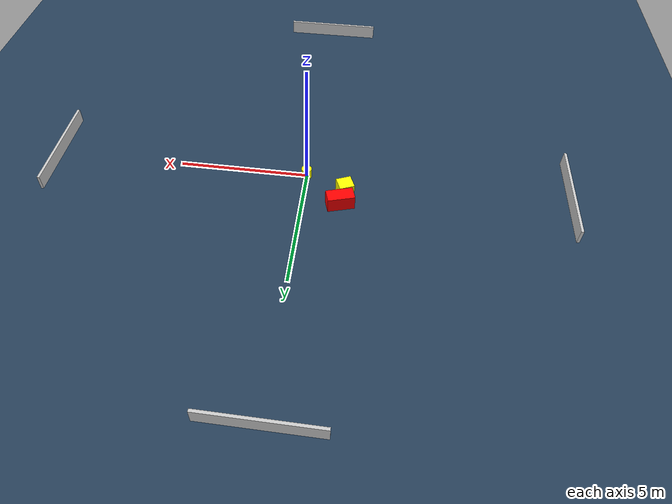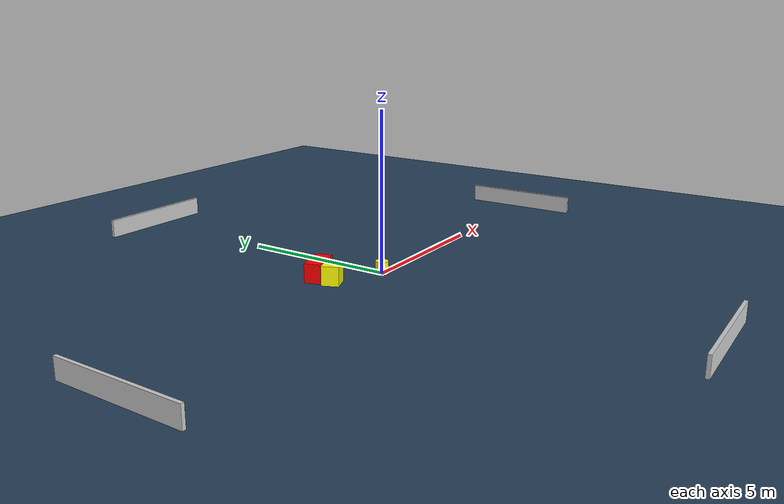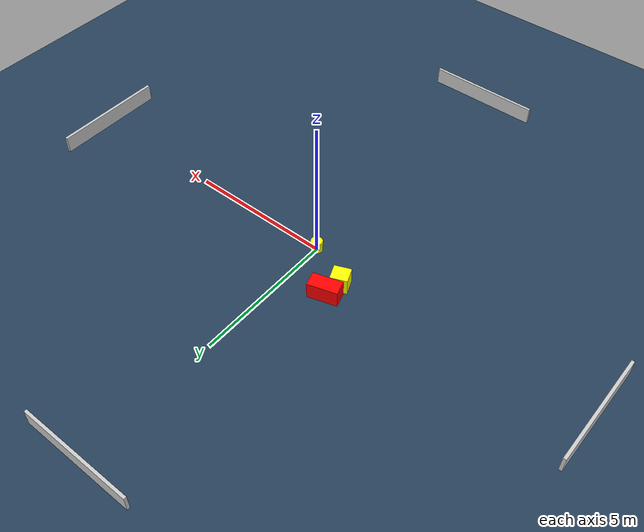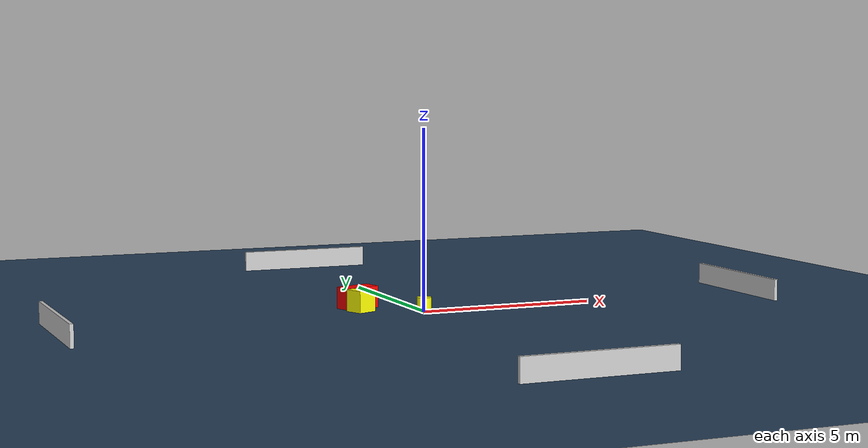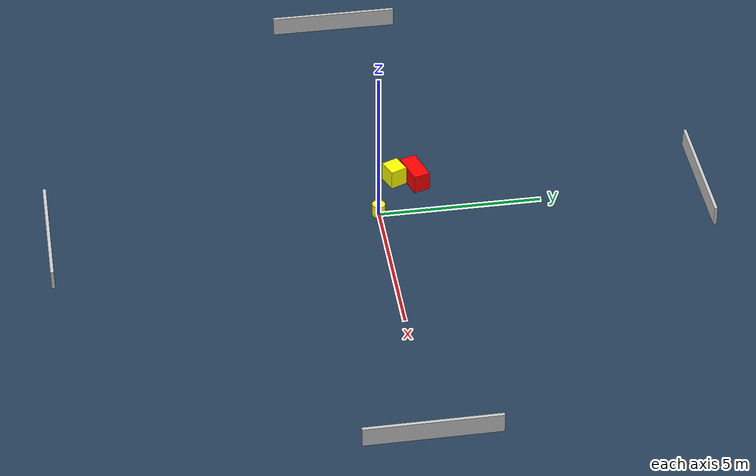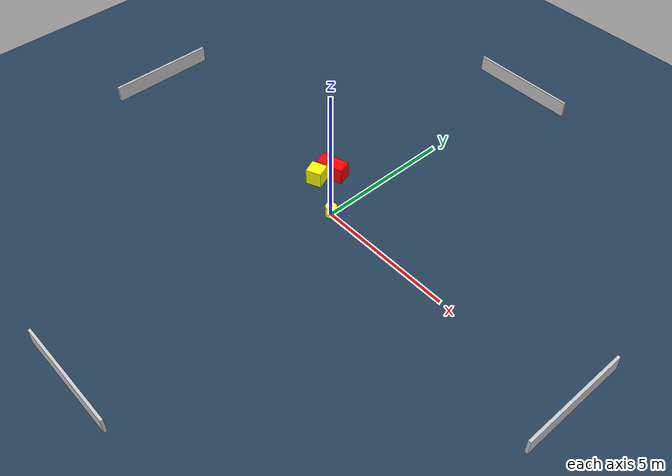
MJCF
<?xml version="1.0" ?>
<mujoco model="generated_environment">
  <option timestep="0.01" integrator="RK4" cone="elliptic"/>
  <default>
    <geom density="1"/>
  </default>
  <asset>
    <texture builtin="gradient" height="3072" name="skybox" rgb1="0.3 0.5 0.7" rgb2="0 0 0" type="skybox" width="512"/>
    <texture builtin="checker" height="300" name="groundplane" rgb1="0.2 0.3 0.4" rgb2="0.1 0.2 0.3" type="2d" width="300"/>
    <material name="groundplane" reflectance="0.2" texrepeat="5 5" texture="groundplane"/>
  </asset>
  <worldbody>
    <light dir="0 0 -1" directional="true" pos="0 0 1.5"/>
    <geom condim="3" friction="0.5 0.005 0.001" material="groundplane" name="floor" pos="0 0 0" size="0 0 0.05" type="plane"/>
    <body name="walls">
      <geom name="wall_1" condim="4" pos="-10.0 0.0 0.3" rgba="0.800000011920929 0.800000011920929 0.800000011920929 1.0" size="0.05 2.0 0.3" type="box"/>
      <geom name="wall_2" condim="4" pos="10.0 0.0 0.3" rgba="0.800000011920929 0.800000011920929 0.800000011920929 1.0" size="0.05 2.0 0.3" type="box"/>
      <geom name="wall_3" condim="4" pos="0.0 -10.0 0.3" rgba="0.800000011920929 0.800000011920929 0.800000011920929 1.0" size="2.0 0.05 0.3" type="box"/>
      <geom name="wall_4" condim="4" pos="0.0 10.0 0.3" rgba="0.800000011920929 0.800000011920929 0.800000011920929 1.0" size="2.0 0.05 0.3" type="box"/>
    </body>
    <body name="robot">
      <joint name="joint_x" type="slide" pos="0 0 0" axis="1 0 0"/>
      <joint name="joint_y" type="slide" pos="0 0 0" axis="0 1 0"/>
      <geom name="robot" type="cylinder" pos="0.0 0.0 0.2" size="0.2 0.2 0.0" mass="5.0" friction="1.0 0.005 0.0001" condim="4" rgba="1.0 1.0 0.0 1.0"/>
    </body>
    <body name="obstacle_1_movable">
      <geom name="obstacle_1_movable" condim="4" pos="-1.5604563189071872 0.7252298534640741 0.3" euler="0 0 292.6624675880438" friction="0.0 0.005 0.001" rgba="1.0 1.0 0.0 1.0" size="0.26696698131331975 0.2876117652434794 0.3" type="box" mass="0.1"/>
      <joint type="free"/>
    </body>
    <body name="obstacle_2_static">
      <geom name="obstacle_2_static" condim="4" pos="-1.43197503873043 1.3410637995233425 0.3" euler="0 0 286.57615080131825" friction="0.0 0.005 0.001" rgba="1.0 0.0 0.0 1.0" size="0.2569571031997593 0.5122442806690375 0.3" type="box"/>
    </body>
  </worldbody>
  <actuator>
    <motor name="actuator_x" joint="joint_x" gear="1" ctrlrange="-1 1"/>
    <motor name="actuator_y" joint="joint_y" gear="1" ctrlrange="-1 1"/>
  </actuator>
</mujoco>
